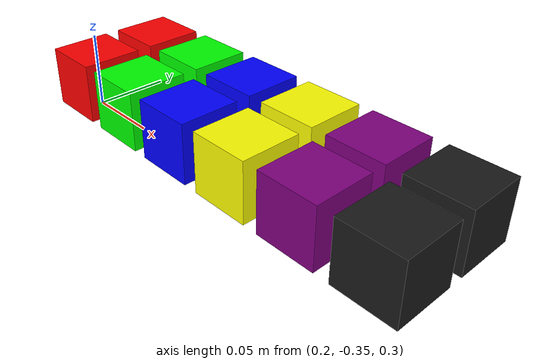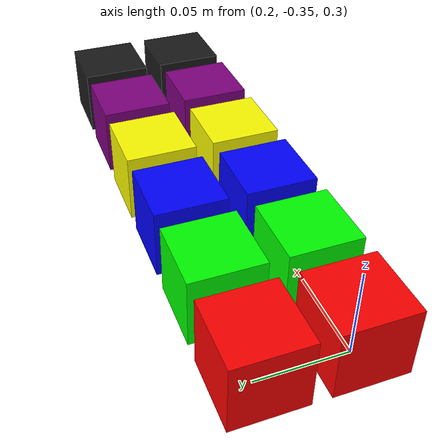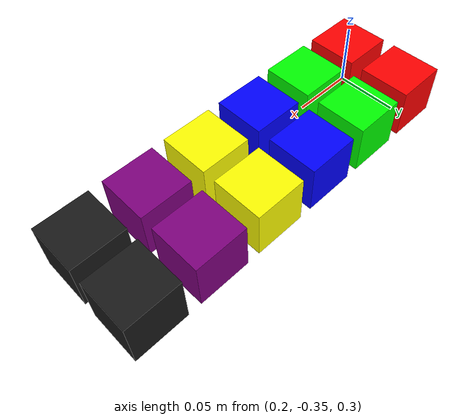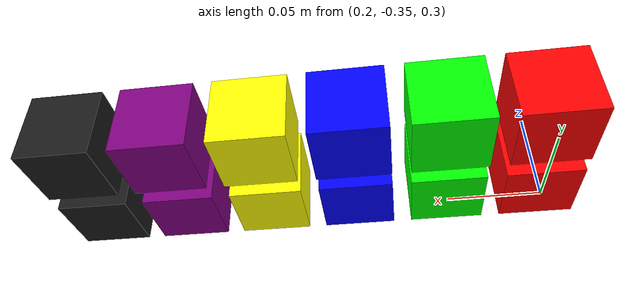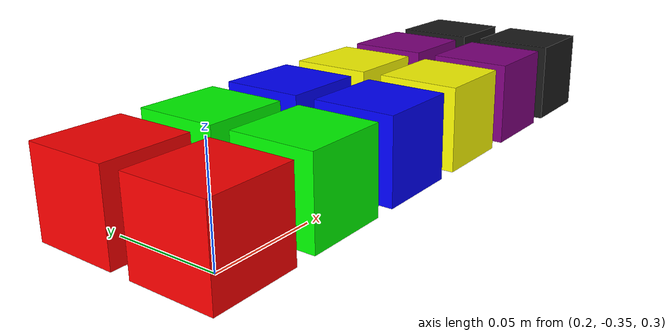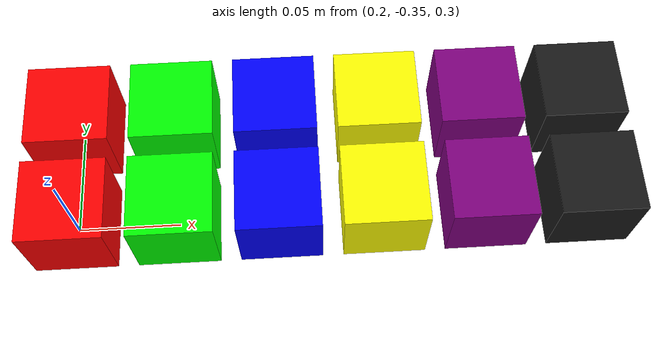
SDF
<?xml version="1.0" ?>
<sdf version="1.7">
  <model name="cubes">
    <static>false</static>

    <link name="red_1">
      <pose>0.2 -0.3 0.32 0 0 0</pose>
      <inertial>
        <mass>0.02</mass>
        <inertia><ixx>5.33e-6</ixx><iyy>5.33e-6</iyy><izz>5.33e-6</izz><ixy>0</ixy><ixz>0</ixz><iyz>0</iyz></inertia>
      </inertial>
      <collision name="c"><geometry><box><size>0.04 0.04 0.04</size></box></geometry></collision>
      <visual name="v"><geometry><box><size>0.04 0.04 0.04</size></box></geometry><material><ambient>1 0 0 1</ambient><diffuse>1 0 0 1</diffuse></material></visual>
    </link>
    <link name="red_2">
      <pose>0.2 -0.35 0.32 0 0 0</pose>
      <inertial>
        <mass>0.02</mass>
        <inertia><ixx>5.33e-6</ixx><iyy>5.33e-6</iyy><izz>5.33e-6</izz><ixy>0</ixy><ixz>0</ixz><iyz>0</iyz></inertia>
      </inertial>
      <collision name="c"><geometry><box><size>0.04 0.04 0.04</size></box></geometry></collision>
      <visual name="v"><geometry><box><size>0.04 0.04 0.04</size></box></geometry><material><ambient>1 0 0 1</ambient><diffuse>1 0 0 1</diffuse></material></visual>
    </link>

    <link name="green_1">
      <pose>0.25 -0.3 0.32 0 0 0</pose>
      <inertial>
        <mass>0.02</mass>
        <inertia><ixx>5.33e-6</ixx><iyy>5.33e-6</iyy><izz>5.33e-6</izz><ixy>0</ixy><ixz>0</ixz><iyz>0</iyz></inertia>
      </inertial>
      <collision name="c"><geometry><box><size>0.04 0.04 0.04</size></box></geometry></collision>
      <visual name="v"><geometry><box><size>0.04 0.04 0.04</size></box></geometry><material><ambient>0 1 0 1</ambient><diffuse>0 1 0 1</diffuse></material></visual>
    </link>
    <link name="green_2">
      <pose>0.25 -0.35 0.32 0 0 0</pose>
      <inertial>
        <mass>0.02</mass>
        <inertia><ixx>5.33e-6</ixx><iyy>5.33e-6</iyy><izz>5.33e-6</izz><ixy>0</ixy><ixz>0</ixz><iyz>0</iyz></inertia>
      </inertial>
      <collision name="c"><geometry><box><size>0.04 0.04 0.04</size></box></geometry></collision>
      <visual name="v"><geometry><box><size>0.04 0.04 0.04</size></box></geometry><material><ambient>0 1 0 1</ambient><diffuse>0 1 0 1</diffuse></material></visual>
    </link>

    <link name="blue_1">
      <pose>0.3 -0.3 0.32 0 0 0</pose>
      <inertial>
        <mass>0.02</mass>
        <inertia><ixx>5.33e-6</ixx><iyy>5.33e-6</iyy><izz>5.33e-6</izz><ixy>0</ixy><ixz>0</ixz><iyz>0</iyz></inertia>
      </inertial>
      <collision name="c"><geometry><box><size>0.04 0.04 0.04</size></box></geometry></collision>
      <visual name="v"><geometry><box><size>0.04 0.04 0.04</size></box></geometry><material><ambient>0 0 1 1</ambient><diffuse>0 0 1 1</diffuse></material></visual>
    </link>
    <link name="blue_2">
      <pose>0.3 -0.35 0.32 0 0 0</pose>
      <inertial>
        <mass>0.02</mass>
        <inertia><ixx>5.33e-6</ixx><iyy>5.33e-6</iyy><izz>5.33e-6</izz><ixy>0</ixy><ixz>0</ixz><iyz>0</iyz></inertia>
      </inertial>
      <collision name="c"><geometry><box><size>0.04 0.04 0.04</size></box></geometry></collision>
      <visual name="v"><geometry><box><size>0.04 0.04 0.04</size></box></geometry><material><ambient>0 0 1 1</ambient><diffuse>0 0 1 1</diffuse></material></visual>
    </link>

    <link name="yellow_1">
      <pose>0.35 -0.3 0.32 0 0 0</pose>
      <inertial>
        <mass>0.02</mass>
        <inertia><ixx>5.33e-6</ixx><iyy>5.33e-6</iyy><izz>5.33e-6</izz><ixy>0</ixy><ixz>0</ixz><iyz>0</iyz></inertia>
      </inertial>
      <collision name="c"><geometry><box><size>0.04 0.04 0.04</size></box></geometry></collision>
      <visual name="v"><geometry><box><size>0.04 0.04 0.04</size></box></geometry><material><ambient>1 1 0 1</ambient><diffuse>1 1 0 1</diffuse></material></visual>
    </link>
    <link name="yellow_2">
      <pose>0.35 -0.35 0.32 0 0 0</pose>
      <inertial>
        <mass>0.02</mass>
        <inertia><ixx>5.33e-6</ixx><iyy>5.33e-6</iyy><izz>5.33e-6</izz><ixy>0</ixy><ixz>0</ixz><iyz>0</iyz></inertia>
      </inertial>
      <collision name="c"><geometry><box><size>0.04 0.04 0.04</size></box></geometry></collision>
      <visual name="v"><geometry><box><size>0.04 0.04 0.04</size></box></geometry><material><ambient>1 1 0 1</ambient><diffuse>1 1 0 1</diffuse></material></visual>
    </link>

    <link name="purple_1">
      <pose>0.4 -0.3 0.32 0 0 0</pose>
      <inertial>
        <mass>0.02</mass>
        <inertia><ixx>5.33e-6</ixx><iyy>5.33e-6</iyy><izz>5.33e-6</izz><ixy>0</ixy><ixz>0</ixz><iyz>0</iyz></inertia>
      </inertial>
      <collision name="c"><geometry><box><size>0.04 0.04 0.04</size></box></geometry></collision>
      <visual name="v"><geometry><box><size>0.04 0.04 0.04</size></box></geometry><material><ambient>0.5 0 0.5 1</ambient><diffuse>0.5 0 0.5 1</diffuse></material></visual>
    </link>
    <link name="purple_2">
      <pose>0.4 -0.35 0.32 0 0 0</pose>
      <inertial>
        <mass>0.02</mass>
        <inertia><ixx>5.33e-6</ixx><iyy>5.33e-6</iyy><izz>5.33e-6</izz><ixy>0</ixy><ixz>0</ixz><iyz>0</iyz></inertia>
      </inertial>
      <collision name="c"><geometry><box><size>0.04 0.04 0.04</size></box></geometry></collision>
      <visual name="v"><geometry><box><size>0.04 0.04 0.04</size></box></geometry><material><ambient>0.5 0 0.5 1</ambient><diffuse>0.5 0 0.5 1</diffuse></material></visual>
    </link>

    <link name="black_1">
      <pose>0.45 -0.3 0.32 0 0 0</pose>
      <inertial>
        <mass>0.02</mass>
        <inertia><ixx>5.33e-6</ixx><iyy>5.33e-6</iyy><izz>5.33e-6</izz><ixy>0</ixy><ixz>0</ixz><iyz>0</iyz></inertia>
      </inertial>
      <collision name="c"><geometry><box><size>0.04 0.04 0.04</size></box></geometry></collision>
      <visual name="v"><geometry><box><size>0.04 0.04 0.04</size></box></geometry><material><ambient>0.1 0.1 0.1 1</ambient><diffuse>0.1 0.1 0.1 1</diffuse></material></visual>
    </link>
    <link name="black_2">
      <pose>0.45 -0.35 0.32 0 0 0</pose>
      <inertial>
        <mass>0.02</mass>
        <inertia><ixx>5.33e-6</ixx><iyy>5.33e-6</iyy><izz>5.33e-6</izz><ixy>0</ixy><ixz>0</ixz><iyz>0</iyz></inertia>
      </inertial>
      <collision name="c"><geometry><box><size>0.04 0.04 0.04</size></box></geometry></collision>
      <visual name="v"><geometry><box><size>0.04 0.04 0.04</size></box></geometry><material><ambient>0.1 0.1 0.1 1</ambient><diffuse>0.1 0.1 0.1 1</diffuse></material></visual>
    </link>
  </model>
</sdf>
